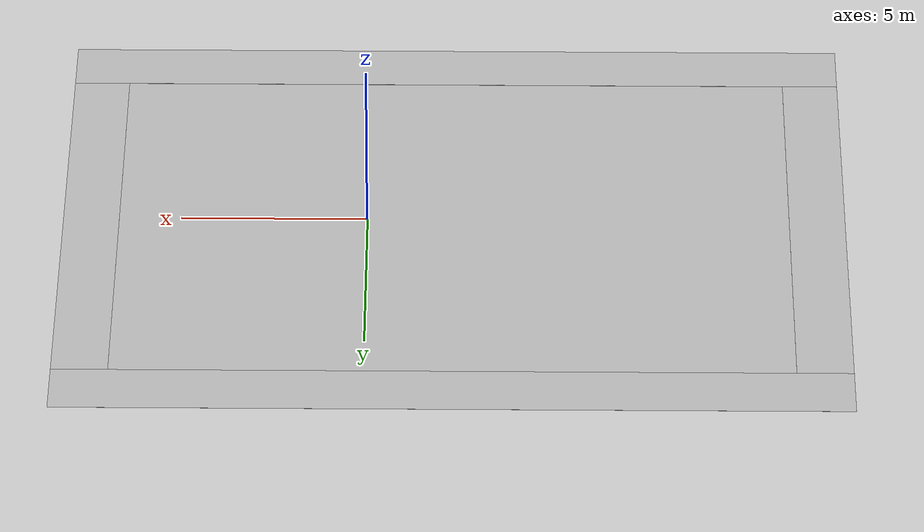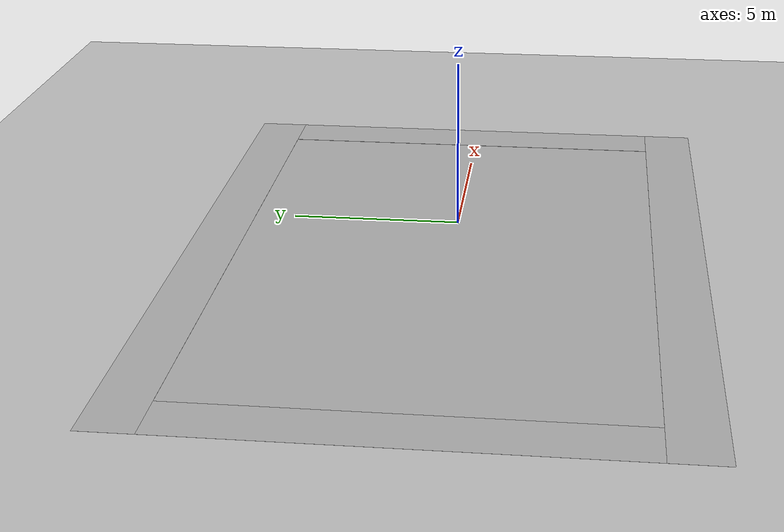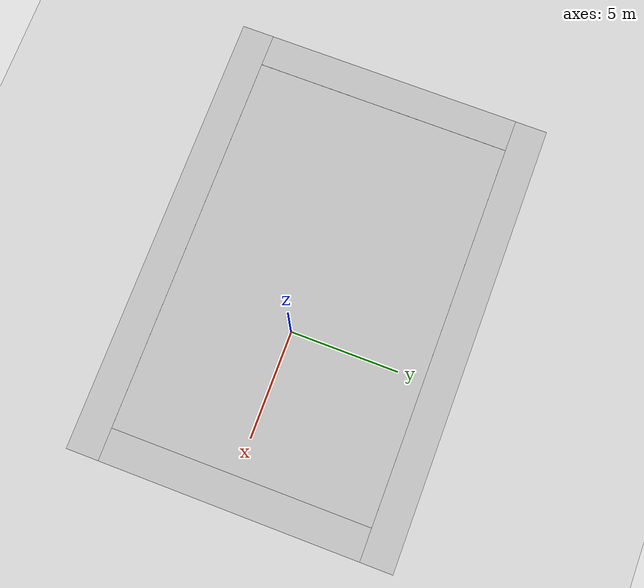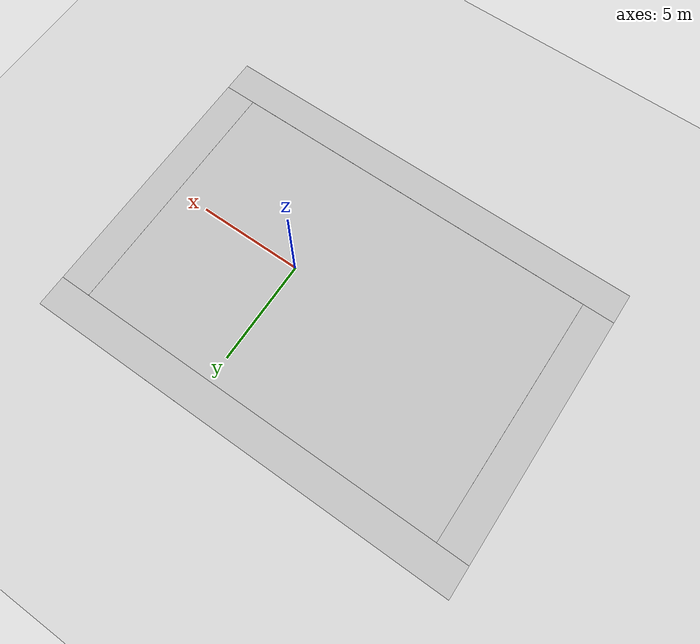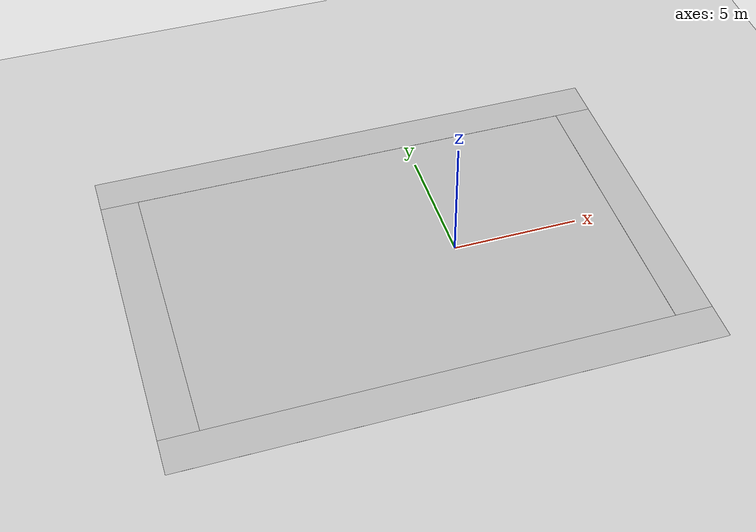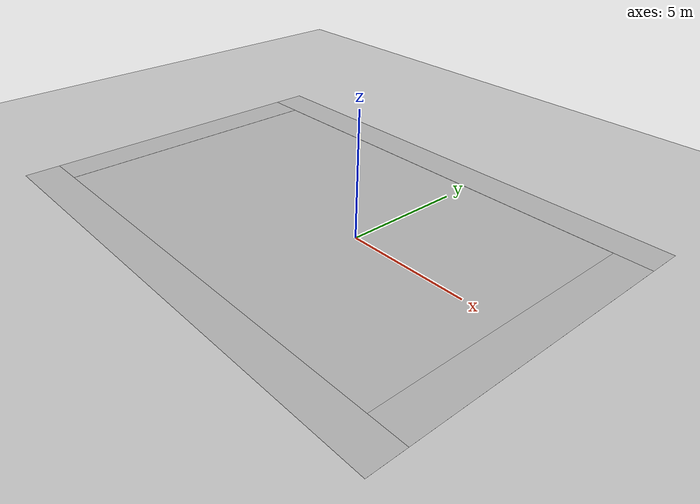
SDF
<sdf version="1.6">
 <world name="default">
  <light name="sun" type="directional">
   <pose>0 0 10 0 -0 0</pose>
   <diffuse>0.8 0.8 0.8 1</diffuse>
   <specular>0.2 0.2 0.2 1</specular>
   <attenuation>
    <range>1000</range>
    <constant>0.9</constant>
    <linear>0.01</linear>
    <quadratic>0.001</quadratic>
   </attenuation>
   <direction>-0.5 0.1 -0.9</direction>
  </light>
  <model name="ground_plane">
   <static>1</static>
   <link name="link">
    <collision name="collision">
     <geometry><plane><normal>0 0 1</normal><size>100 100</size></plane></geometry>
     <surface>
      <contact><collide_bitmask>65535</collide_bitmask></contact>
      <friction><ode><mu>100</mu><mu2>50</mu2></ode></friction>
     </surface>
    </collision>
    <visual name="visual">
     <cast_shadows>0</cast_shadows>
     <geometry><plane><normal>0 0 1</normal><size>100 100</size></plane></geometry>
     <material>
      <script><uri>file://media/materials/scripts/gazebo.material</uri><name>Gazebo/Grey</name></script>
     </material>
    </visual>
   </link>
  </model>
  <gravity>0 0 -9.8</gravity>
  <magnetic_field>6e-06 2.3e-05 -4.2e-05</magnetic_field>
  <atmosphere type="adiabatic"/>
  <physics name="default_physics" default="0" type="ode">
   <max_step_size>0.001</max_step_size>
   <real_time_factor>1</real_time_factor>
   <real_time_update_rate>1000</real_time_update_rate>
  </physics>
  <scene><ambient>0.4 0.4 0.4 1</ambient><background>0.7 0.7 0.7 1</background><shadows>1</shadows></scene>
  <audio><device>default</device></audio>
  <spherical_coordinates>
   <surface_model>EARTH_WGS84</surface_model>
   <latitude_deg>0</latitude_deg>
   <longitude_deg>0</longitude_deg>
   <elevation>0</elevation>
   <heading_deg>0</heading_deg>
  </spherical_coordinates>
  <model name="RoboCon25_Field">
   <static>1</static>
   <link name="chassis">
    <pose>0 0 0.01 0 -0 0</pose>
    <collision name="collision">
     <geometry><plane><normal>0 0 1</normal><size>18 12</size></plane></geometry>
     <surface><friction><ode><mu>100</mu><mu2>50</mu2></ode></friction></surface>
    </collision>
    <visual name="carpet">
     <cast_shadows>0</cast_shadows>
     <geometry><plane><normal>0 0 1</normal><size>18 12</size></plane></geometry>
     <material>
      <script>
       <uri>file://materials/scripts/</uri>
       <uri>file://materials/textures/</uri>
       <name>RoboCon/Carpet</name>
      </script>
     </material>
    </visual>
    <visual name="base1">
     <pose>0 6.75 0.01 0 -0 0</pose>
     <cast_shadows>0</cast_shadows>
     <geometry><plane><normal>0 0 1</normal><size>21 1.5</size></plane></geometry>
     <material>
      <script>
       <uri>file://materials/scripts/</uri>
       <uri>file://materials/textures/</uri>
       <name>RoboCon/FieldBorder</name>
      </script>
     </material>
    </visual>
    <visual name="base2">
     <pose>0 -6.75 0.01 0 -0 0</pose>
     <cast_shadows>0</cast_shadows>
     <geometry><plane><normal>0 0 1</normal><size>21 1.5</size></plane></geometry>
     <material>
      <script>
       <uri>file://materials/scripts/</uri>
       <uri>file://materials/textures/</uri>
       <name>RoboCon/FieldBorder</name>
      </script>
     </material>
    </visual>
    <visual name="base3">
     <pose>9.75 0 0.01 0 -0 0</pose>
     <cast_shadows>0</cast_shadows>
     <geometry><plane><normal>0 0 1</normal><size>1.5 12</size></plane></geometry>
     <material>
      <script>
       <uri>file://materials/scripts/</uri>
       <uri>file://materials/textures/</uri>
       <name>RoboCon/FieldBorder</name>
      </script>
     </material>
    </visual>
    <visual name="base4">
     <pose>-9.75 0 0.01 0 -0 0</pose>
     <cast_shadows>0</cast_shadows>
     <geometry><plane><normal>0 0 1</normal><size>1.5 12</size></plane></geometry>
     <material>
      <script>
       <uri>file://materials/scripts/</uri>
       <uri>file://materials/textures/</uri>
       <name>RoboCon/FieldBorder</name>
      </script>
     </material>
    </visual>
   </link>
   <pose>-2.31993 0.203102 0 0 -0 0</pose>
  </model>
 </world>
</sdf>
